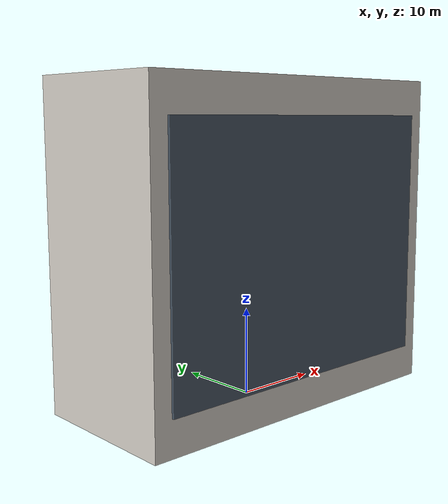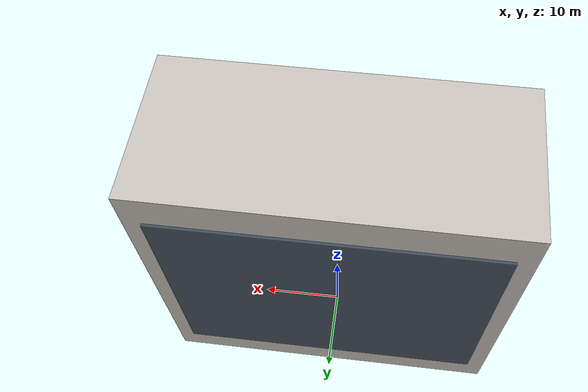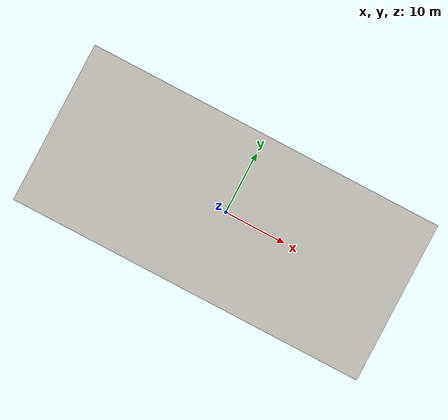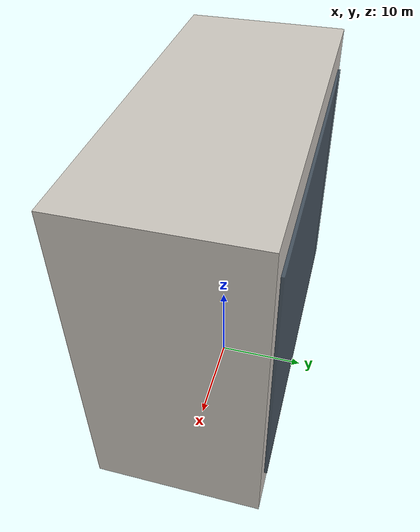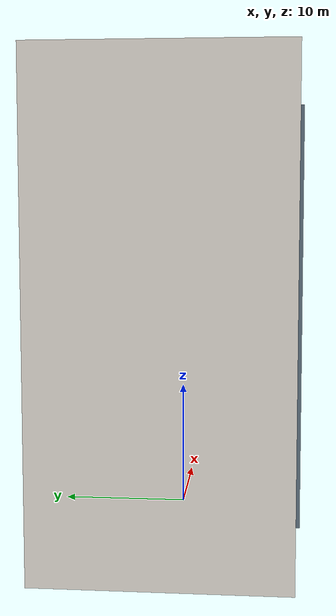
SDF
<?xml version="1.0" ?>
<sdf version="1.8">
  <model name="guandong_east_commercial_block">
    <static>true</static>
    <link name="block_link">
      <collision name="col"><pose>0 0 18.0 0 0 0</pose><geometry><box><size>40.0 18.0 36.0</size></box></geometry></collision>
      <visual name="main_vis"><pose>0 0 18.0 0 0 0</pose><geometry><box><size>40.0 18.0 36.0</size></box></geometry><material><ambient>0.73 0.72 0.70 1</ambient><diffuse>0.80 0.78 0.75 1</diffuse></material></visual>
      <visual name="balconies"><pose>0 0 18.0 0 0 0</pose><geometry><box><size>36.0 18.6 28.0</size></box></geometry><material><ambient>0.22 0.26 0.32 0.88</ambient><diffuse>0.28 0.34 0.40 0.88</diffuse></material></visual>
    </link>
  </model>
</sdf>
